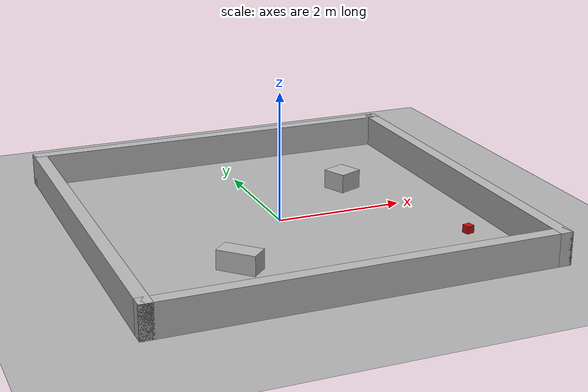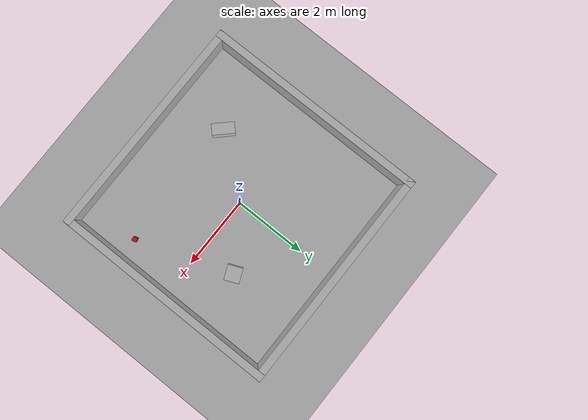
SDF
<?xml version="1.0"?>
<!-- Simple indoor room for simulating Mote: a 6x6 m walled room with a few
     box obstacles so the lidar always has structure to see and SLAM has
     features to match against. -->
<sdf version="1.8">
  <world name="mote_world">
    <physics name="default_physics" type="dartsim">
      <max_step_size>0.004</max_step_size>
      <real_time_factor>1.0</real_time_factor>
    </physics>

    <plugin filename="gz-sim-physics-system" name="gz::sim::systems::Physics"/>
    <plugin filename="gz-sim-sensors-system" name="gz::sim::systems::Sensors">
      <render_engine>ogre2</render_engine>
    </plugin>
    <plugin filename="gz-sim-scene-broadcaster-system" name="gz::sim::systems::SceneBroadcaster"/>
    <plugin filename="gz-sim-user-commands-system" name="gz::sim::systems::UserCommands"/>

    <light type="directional" name="sun">
      <cast_shadows>false</cast_shadows>
      <pose>0 0 10 0 0 0</pose>
      <diffuse>0.8 0.8 0.8 1</diffuse>
      <direction>-0.5 0.1 -0.9</direction>
    </light>

    <model name="ground_plane">
      <static>true</static>
      <link name="link">
        <collision name="collision">
          <geometry><plane><normal>0 0 1</normal><size>20 20</size></plane></geometry>
        </collision>
        <visual name="visual">
          <geometry><plane><normal>0 0 1</normal><size>20 20</size></plane></geometry>
          <material><ambient>0.7 0.7 0.7 1</ambient><diffuse>0.7 0.7 0.7 1</diffuse></material>
        </visual>
      </link>
    </model>

    <model name="walls">
      <static>true</static>
      <link name="link">
        <collision name="north">
          <pose>0 3 0.25 0 0 0</pose>
          <geometry><box><size>6.2 0.2 0.5</size></box></geometry>
        </collision>
        <visual name="north_v">
          <pose>0 3 0.25 0 0 0</pose>
          <geometry><box><size>6.2 0.2 0.5</size></box></geometry>
        </visual>
        <collision name="south">
          <pose>0 -3 0.25 0 0 0</pose>
          <geometry><box><size>6.2 0.2 0.5</size></box></geometry>
        </collision>
        <visual name="south_v">
          <pose>0 -3 0.25 0 0 0</pose>
          <geometry><box><size>6.2 0.2 0.5</size></box></geometry>
        </visual>
        <collision name="east">
          <pose>3 0 0.25 0 0 0</pose>
          <geometry><box><size>0.2 6.2 0.5</size></box></geometry>
        </collision>
        <visual name="east_v">
          <pose>3 0 0.25 0 0 0</pose>
          <geometry><box><size>0.2 6.2 0.5</size></box></geometry>
        </visual>
        <collision name="west">
          <pose>-3 0 0.25 0 0 0</pose>
          <geometry><box><size>0.2 6.2 0.5</size></box></geometry>
        </collision>
        <visual name="west_v">
          <pose>-3 0 0.25 0 0 0</pose>
          <geometry><box><size>0.2 6.2 0.5</size></box></geometry>
        </visual>
      </link>
    </model>

    <model name="box_obstacle_1">
      <static>true</static>
      <pose>1.5 1.0 0.15 0 0 0.4</pose>
      <link name="link">
        <collision name="collision">
          <geometry><box><size>0.4 0.4 0.3</size></box></geometry>
        </collision>
        <visual name="visual">
          <geometry><box><size>0.4 0.4 0.3</size></box></geometry>
        </visual>
      </link>
    </model>

    <model name="box_obstacle_2">
      <static>true</static>
      <pose>-1.2 -1.5 0.15 0 0 -0.8</pose>
      <link name="link">
        <collision name="collision">
          <geometry><box><size>0.6 0.3 0.3</size></box></geometry>
        </collision>
        <visual name="visual">
          <geometry><box><size>0.6 0.3 0.3</size></box></geometry>
        </visual>
      </link>
    </model>

    <model name="red_box">
      <static>true</static>
      <pose>2.4 -1.5 0.06 0 0 0.2</pose>
      <link name="link">
        <collision name="collision">
          <geometry><box><size>0.12 0.12 0.12</size></box></geometry>
        </collision>
        <visual name="visual">
          <geometry><box><size>0.12 0.12 0.12</size></box></geometry>
          <material>
            <ambient>0.8 0.05 0.05 1</ambient>
            <diffuse>0.8 0.05 0.05 1</diffuse>
          </material>
        </visual>
      </link>
    </model>
  </world>
</sdf>
